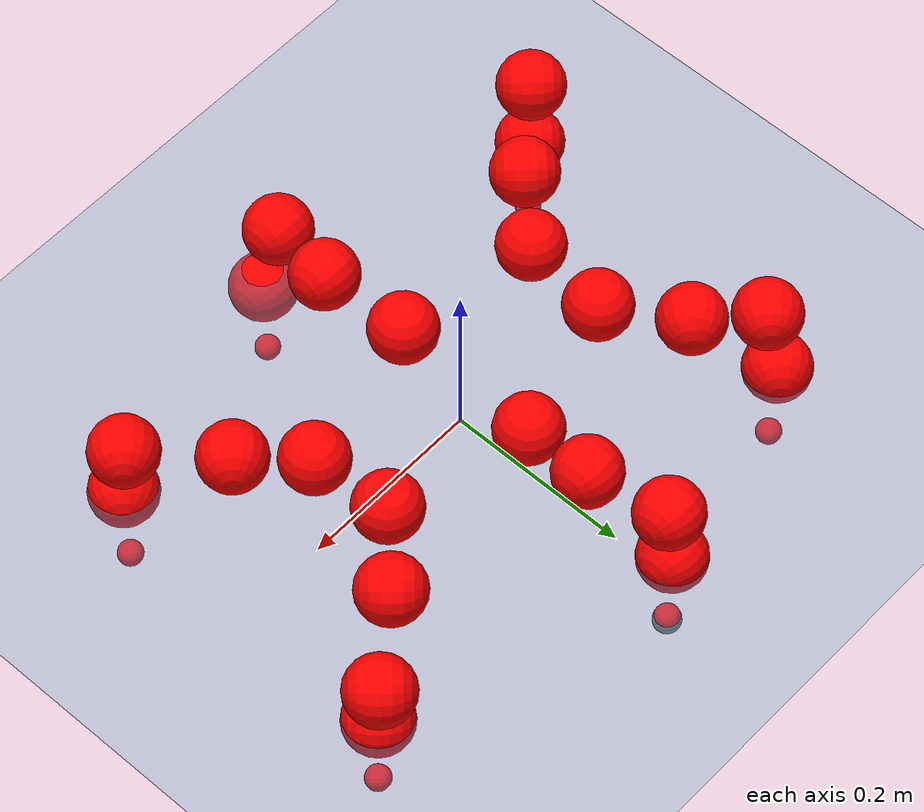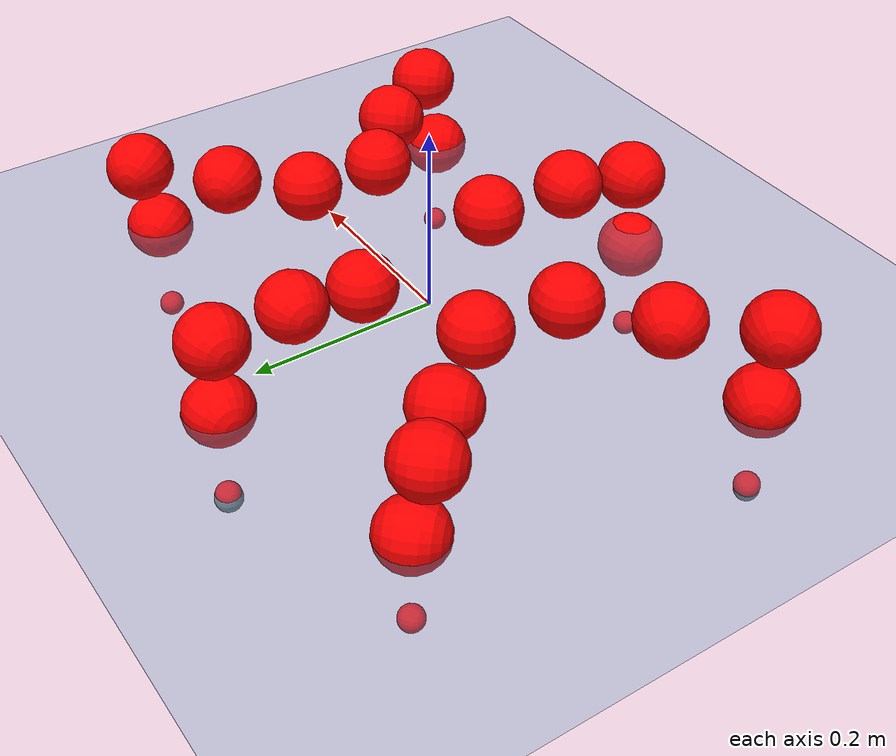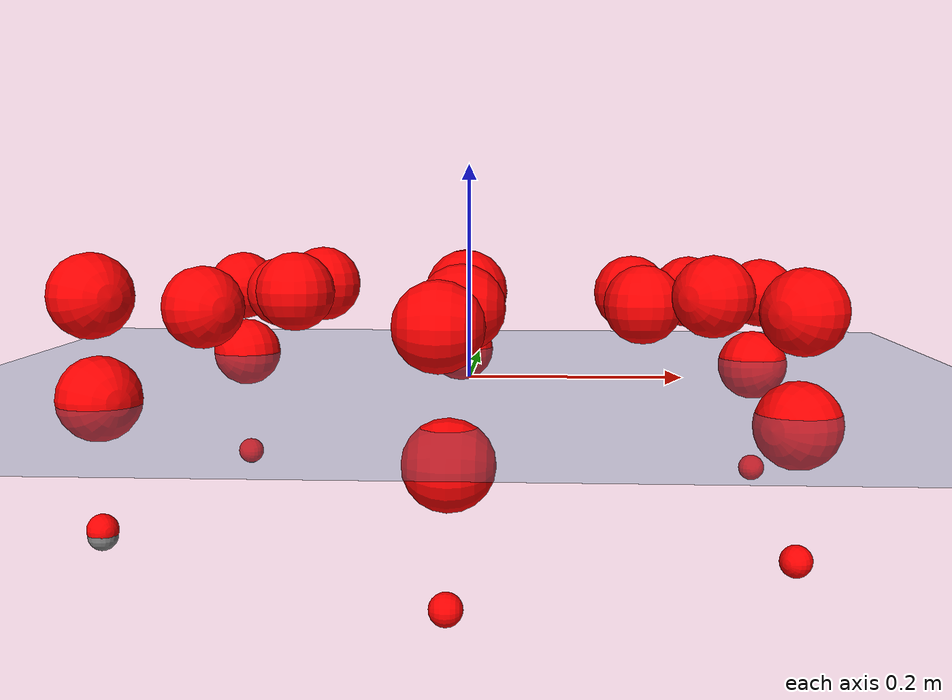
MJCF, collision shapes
<mujoco model="Golem">
  <compiler angle="radian" assetdir="assets" balanceinertia="true" inertiafromgeom="false"/>

  <option timestep="0.005" density="1.2" viscosity="2e-05"/>

  <size nkey="1"/>

  <visual>
    <quality shadowsize="8192"/>
    <map shadowclip="0.5"/>
  </visual>

  <default>
    <default class="/">
      <joint armature="0.01" damping="0.01" frictionloss="0.01"/>
      <geom contype="0" conaffinity="0" group="1" solref="-1000 -80"/>
      <site size="0.01 0.005 0.005" group="5"/>
      <general forcelimited="true" biastype="affine" gainprm="25" biasprm="0 -25 -0.5"/>
      <default class="visual">
        <geom type="mesh" group="2"/>
      </default>
      <default class="collision">
        <geom group="3"/>
      </default>
      <default class="foot">
        <geom size="0.01 0 0" condim="6" group="4" priority="1" solimp="0.015 1 0.01"/>
      </default>
      <default class="reward_collision_sphere">
        <geom group="5" rgba="1 0 0 1"/>
      </default>
    </default>
  </default>

  <asset>
    <texture type="skybox" colorspace="auto" name="//unnamed_texture_0" builtin="gradient" rgb1="0.95 0.95 0.95" rgb2="0.95 0.95 0.95" width="100" height="600"/>
    <texture type="2d" colorspace="auto" name="texplane" builtin="checker" rgb1="0.345 0.575 0.748" rgb2="0.345 0.575 0.748" markrgb="1 1 1" width="512" height="512"/>
    <material name="MatPlane" class="/" texture="texplane" texuniform="true" texrepeat="2 2" specular="0.9"/>
    <mesh name="body" class="/" file="body.stl" scale="0.001 0.001 0.001"/>
    <mesh name="coxa" class="/" file="coxa.stl" scale="0.001 0.001 0.001"/>
    <mesh name="femur" class="/" file="femur.stl" scale="0.001 0.001 0.001"/>
    <mesh name="tibia" class="/" file="tibia.stl" scale="0.001 0.001 0.001"/>
    <mesh name="tarsus" class="/" file="tarsus.stl" scale="0.001 0.001 0.001"/>
  </asset>

  <worldbody>
    <geom name="floor" class="/" size="100 100 0.125" type="plane" group="0" material="MatPlane"/>
    <light name="toplight_shadow" class="/" pos="0 0 5" dir="0.0990148 0.0990148 -0.990148" type="directional" ambient="0.04 0.04 0.04" diffuse="0.55 0.55 0.55" specular="0.12 0.12 0.12"/>
    <light name="toplight_fill" class="/" pos="0 0 5" dir="0.0990148 0.0990148 -0.990148" type="directional" castshadow="false" ambient="0.04 0.04 0.04" diffuse="0.3 0.3 0.3" specular="0.08 0.08 0.08"/>
    <body name="trunk" pos="0.00893068 -0.00303549 0.0161275" quat="1 -0.000179543 0.000496812 0.000419447">
      <inertial pos="-0.00924165 0.000212151 -0.0148625" quat="0.998186 -0.0379214 0.0107564 0.0455131" mass="2.19828" diaginertia="0.0138252 0.00264503 0.0043182"/>
      <joint name="//unnamed_joint_0" type="free"/>
      <geom name="//unnamed_geom_1" class="/" pos="0 0 0.0556748" quat="1 0 0 0" type="mesh" rgba="0.9 0.9 0.9 1" mesh="body"/>
      <site name="imu" class="/" pos="0.118728 0.0176863 0.0550105" size="0.00900817"/>
      <camera name="track" class="/" pos="0 -1.59572 0" quat="0.707107 0.707107 0 0" mode="trackcom"/>
      <camera name="ego_camera" class="/" pos="0.134507 0 0.0869919" quat="-0.5 -0.5 0.5 0.5"/>
      <body name="coxa_RR" pos="-0.18791 -0.0686462 0.0678015" quat="0.381772 0.00121111 0.00146271 -0.924255">
        <inertial pos="0.00163485 0.0158919 -0.00385777" quat="0.999645 -0.00276631 -0.0228648 0.0134142" mass="0.177154" diaginertia="0.0165576 0.00323466 0.00553781"/>
        <joint name="coxa_joint_RR" class="/" pos="0 0 0" axis="-0.0716217 0.051911 -0.99608" range="-3.14606 3.36773" armature="0.0135457" damping="0.0486134" frictionloss="0.00720052"/>
        <geom name="//unnamed_geom_2" class="/" type="mesh" rgba="0.2 0.2 0.2 1" mesh="coxa"/>
        <geom name="//unnamed_geom_3" class="reward_collision_sphere" size="0.0360327" pos="-0.0310401 0 0"/>
        <body name="femur_RR" pos="0.0653897 0.0008046 -0.00862121" quat="0.49989 -0.500031 0.500337 0.499741">
          <inertial pos="0.00562333 -0.00992777 0.00986257" quat="0.999989 0.00223738 -0.00167539 -0.00387286" mass="0.155115" diaginertia="0.0123497 0.0033131 0.00517607"/>
          <joint name="femur_joint_RR" class="/" pos="0 0 0" axis="0.000751534 -0.00202231 -0.999998" stiffness="0.0354787" range="-3.26022 3.43787" armature="0.0143029" damping="0" frictionloss="0.00365378"/>
          <geom name="//unnamed_geom_4" class="/" type="mesh" rgba="0.9 0.9 0.9 1" mesh="femur"/>
          <geom name="//unnamed_geom_5" class="reward_collision_sphere" size="0.0360327"/>
          <body name="tibia_RR" pos="-0.0145122 -0.0976029 -0.0113852" quat="0.003411 0.999989 -0.00275995 0.00155876">
            <inertial pos="0.0138598 0.0106128 -0.00043327" quat="0.998063 0.0567623 -0.0236229 -0.00947232" mass="0.145125" diaginertia="0.0146035 0.00357453 0.00556776"/>
            <joint name="tibia_joint_RR" class="/" pos="0 0 0" axis="0.00330771 -0.048291 0.998828" range="-2.82658 3.30083" armature="0.0139049" damping="0.0469041" frictionloss="0.00739329"/>
            <geom name="//unnamed_geom_6" class="/" type="mesh" rgba="0.2 0.2 0.2 1" mesh="tibia"/>
            <geom name="//unnamed_geom_7" class="reward_collision_sphere" size="0.0360327"/>
            <body name="tarsus_RR" pos="0.0858606 -0.00479245 -0.000108311" quat="0.999995 0.00067533 0.00133519 0.00266621">
              <inertial pos="0.0583467 -0.0146527 0.0119218" quat="0.478067 0.527423 0.507624 0.48538" mass="0.135172" diaginertia="0.0113832 0.00267536 0.00467772"/>
              <joint name="tarsus_joint_RR" class="/" pos="0 0 0" axis="0.00945843 0.00752931 0.999927" stiffness="0.076757" range="-3.22227 3.13971" armature="0.00288547" damping="0" frictionloss="0.0032213"/>
              <geom name="//unnamed_geom_8" class="/" type="mesh" rgba="0.9 0.9 0.9 1" mesh="tarsus"/>
              <geom name="foot_1" class="foot" size="0.012914" pos="0.115883 0 0" quat="0 -0.707107 0 0.707107"/>
              <geom name="//unnamed_geom_10" class="reward_collision_sphere" size="0.0360327"/>
              <geom name="//unnamed_geom_11" class="reward_collision_sphere" size="0.0135123" pos="0.111227 0 0"/>
              <site name="foot_1" class="foot" pos="0.115883 0 0" quat="0 -0.707107 0 0.707107" size="0.00900817"/>
            </body>
          </body>
        </body>
      </body>
      <body name="coxa_RM" pos="-0.00760885 -0.101061 0.071519" quat="0.70913 -0.00774442 0.000757797 -0.705035">
        <inertial pos="0.0141551 0.000409916 0.00856757" quat="0.999771 0.0074623 0.0182911 0.00827772" mass="0.181945" diaginertia="0.0153923 0.00406214 0.00588305"/>
        <joint name="coxa_joint_RM" class="/" pos="0 0 0" axis="-0.00271535 0.0271326 -0.999628" stiffness="0.0436856" range="-2.8039 3.15458" armature="0.0117003" damping="0" frictionloss="0.00916134"/>
        <geom name="//unnamed_geom_12" class="/" type="mesh" rgba="0.2 0.2 0.2 1" mesh="coxa"/>
        <geom name="//unnamed_geom_13" class="reward_collision_sphere" size="0.0360327" pos="-0.0310401 0 0"/>
        <body name="femur_RM" pos="0.0716879 0.00124915 -0.00766707" quat="0.499937 -0.505242 0.494991 0.499777">
          <inertial pos="-0.00889018 0.00824172 -0.00801349" quat="0.997458 -0.011371 -0.0100692 0.0696153" mass="0.122415" diaginertia="0.00985819 0.00313573 0.00433623"/>
          <joint name="femur_joint_RM" class="/" pos="0 0 0" axis="0.00407354 -0.0103331 -0.999938" stiffness="0.0805809" range="-3.10396 3.15274" armature="0.00676039" damping="0.019376" frictionloss="0.0126425"/>
          <geom name="//unnamed_geom_14" class="/" type="mesh" rgba="0.9 0.9 0.9 1" mesh="femur"/>
          <geom name="//unnamed_geom_15" class="reward_collision_sphere" size="0.0360327"/>
          <body name="tibia_RM" pos="0.00965551 -0.0747003 -0.0142365" quat="-0.00157881 0.999997 -0.00158138 0.000551632">
            <inertial pos="0.00716651 -0.0175227 -0.00262995" quat="0.999605 -0.00205052 -0.0252242 0.0122517" mass="0.116621" diaginertia="0.00924536 0.00256815 0.003488"/>
            <joint name="tibia_joint_RM" class="/" pos="0 0 0" axis="-9.57128e-05 -0.0518688 0.998654" range="-3.37394 3.49329" armature="0.00414098" damping="0.0849236" frictionloss="0.00775243"/>
            <geom name="//unnamed_geom_16" class="/" type="mesh" rgba="0.2 0.2 0.2 1" mesh="tibia"/>
            <geom name="//unnamed_geom_17" class="reward_collision_sphere" size="0.0360327"/>
            <body name="tarsus_RM" pos="0.102652 0.0148094 -0.00990652" quat="0.999982 0.00439411 -0.00415784 -0.000332797">
              <inertial pos="0.0539407 -0.0163845 -0.00762525" quat="0.500451 0.501136 0.501729 0.496668" mass="0.203501" diaginertia="0.0137991 0.00346478 0.00639301"/>
              <joint name="tarsus_joint_RM" class="/" pos="0 0 0" axis="0.0218483 0.0463978 0.998684" stiffness="0.015461" range="-3.10583 3.24316" armature="0.00444687" damping="0" frictionloss="0.00921533"/>
              <geom name="//unnamed_geom_18" class="/" type="mesh" rgba="0.9 0.9 0.9 1" mesh="tarsus"/>
              <geom name="foot_2" class="foot" size="0.00633751" pos="0.115883 0 0" quat="0 -0.707107 0 0.707107"/>
              <geom name="//unnamed_geom_20" class="reward_collision_sphere" size="0.0360327"/>
              <geom name="//unnamed_geom_21" class="reward_collision_sphere" size="0.0135123" pos="0.111227 0 0"/>
              <site name="foot_2" class="foot" pos="0.115883 0 0" quat="0 -0.707107 0 0.707107" size="0.00900817"/>
            </body>
          </body>
        </body>
      </body>
      <body name="coxa_RF" pos="0.173302 -0.0587662 0.0568869" quat="0.924626 0.00337111 -0.00387257 -0.380842">
        <inertial pos="0.0147444 -0.00590344 -0.0133438" quat="0.998695 0.0282611 -0.0366194 0.0216317" mass="0.104029" diaginertia="0.0105252 0.00307933 0.00443643"/>
        <joint name="coxa_joint_RF" class="/" pos="0 0 0" axis="0.0371357 0.03492 -0.9987" stiffness="0.0237267" range="-2.93009 3.14313" armature="0.0154899" damping="0" frictionloss="0.00410862"/>
        <geom name="//unnamed_geom_22" class="/" type="mesh" rgba="0.2 0.2 0.2 1" mesh="coxa"/>
        <geom name="//unnamed_geom_23" class="reward_collision_sphere" size="0.0360327" pos="-0.0310401 0 0"/>
        <body name="femur_RF" pos="0.0459304 0.00255414 0.011198" quat="0.501532 -0.504593 0.494798 0.499026">
          <inertial pos="0.00468418 0.00889406 -0.00421639" quat="0.99979 -0.0174734 0.00954343 0.00488544" mass="0.208155" diaginertia="0.0115866 0.00426895 0.00683127"/>
          <joint name="femur_joint_RF" class="/" pos="0 0 0" axis="0.0145103 0.00611825 -0.999876" stiffness="0.082704" range="-3.30168 3.44942" armature="0.0160735" damping="0" frictionloss="0.0165705"/>
          <geom name="//unnamed_geom_24" class="/" type="mesh" rgba="0.9 0.9 0.9 1" mesh="femur"/>
          <geom name="//unnamed_geom_25" class="reward_collision_sphere" size="0.0360327"/>
          <body name="tibia_RF" pos="0.00716647 -0.102121 -0.0162946" quat="0.000660773 0.999999 -0.00078872 7.44852e-05">
            <inertial pos="0.014931 0.00589044 -0.000391852" quat="0.999904 0.00508255 0.0108014 0.00700742" mass="0.159094" diaginertia="0.0156763 0.00369498 0.00572012"/>
            <joint name="tibia_joint_RF" class="/" pos="0 0 0" axis="-0.0464806 0.0161397 0.998789" stiffness="0.0401344" range="-3.35828 3.07473" armature="0.0097312" damping="0.0777385" frictionloss="0.00431934"/>
            <geom name="//unnamed_geom_26" class="/" type="mesh" rgba="0.2 0.2 0.2 1" mesh="tibia"/>
            <geom name="//unnamed_geom_27" class="reward_collision_sphere" size="0.0360327"/>
            <body name="tarsus_RF" pos="0.089571 0.00432257 0.0148276" quat="0.999982 0.00461681 0.00060407 -0.00378725">
              <inertial pos="0.0762811 0.0103632 0.00218506" quat="0.470522 0.57233 0.464093 0.485453" mass="0.152113" diaginertia="0.0131595 0.00308038 0.0067011"/>
              <joint name="tarsus_joint_RF" class="/" pos="0 0 0" axis="0.0136552 0.0482433 0.998742" range="-3.01725 3.13303" armature="0.015652" damping="0.00788615" frictionloss="0.0153077"/>
              <geom name="//unnamed_geom_28" class="/" type="mesh" rgba="0.9 0.9 0.9 1" mesh="tarsus"/>
              <geom name="foot_3" class="foot" size="0.00914986" pos="0.115883 0 0" quat="0 -0.707107 0 0.707107"/>
              <geom name="//unnamed_geom_30" class="reward_collision_sphere" size="0.0360327"/>
              <geom name="//unnamed_geom_31" class="reward_collision_sphere" size="0.0135123" pos="0.111227 0 0"/>
              <site name="foot_3" class="foot" pos="0.115883 0 0" quat="0 -0.707107 0 0.707107" size="0.00900817"/>
            </body>
          </body>
        </body>
      </body>
      <body name="coxa_LR" pos="-0.177523 0.0709767 0.06871" quat="0.381666 -0.00196232 -0.00195843 0.924296">
        <inertial pos="-0.00795201 -0.000658532 0.00283597" quat="0.99686 -0.0334812 0.0215255 -0.0684499" mass="0.136167" diaginertia="0.0115451 0.0023417 0.00479144"/>
        <joint name="coxa_joint_LR" class="/" pos="0 0 0" axis="0.0129904 -0.0414648 -0.999056" range="-3.10383 2.95769" armature="0.00247826" damping="0" frictionloss="0.00554893"/>
        <geom name="//unnamed_geom_32" class="/" type="mesh" rgba="0.2 0.2 0.2 1" mesh="coxa"/>
        <geom name="//unnamed_geom_33" class="reward_collision_sphere" size="0.0360327" pos="-0.0310401 0 0"/>
        <body name="femur_LR" pos="0.0592471 -0.0111255 -0.0134036" quat="0.496595 -0.497434 0.503433 0.502501">
          <inertial pos="0.0138765 0.0155568 -0.0155458" quat="0.999994 -0.00239564 0.00233421 0.000703451" mass="0.10376" diaginertia="0.00915924 0.00232206 0.00477658"/>
          <joint name="femur_joint_LR" class="/" pos="0 0 0" axis="-0.0639078 -0.0490288 0.996751" stiffness="0.0472341" range="-2.9026 3.39087" armature="0.000928792" damping="0" frictionloss="0.0152134"/>
          <geom name="//unnamed_geom_34" class="/" type="mesh" rgba="0.9 0.9 0.9 1" mesh="femur"/>
          <geom name="//unnamed_geom_35" class="reward_collision_sphere" size="0.0360327"/>
          <body name="tibia_LR" pos="-0.00383795 -0.0735754 0.000285829" quat="-0.000660425 0.999999 0.0011566 0.000543004">
            <inertial pos="-0.000757866 0.0154902 -0.000807144" quat="0.998841 0.0419775 0.0179449 0.015268" mass="0.194745" diaginertia="0.0154531 0.0032527 0.00688571"/>
            <joint name="tibia_joint_LR" class="/" pos="0 0 0" axis="0.00127528 -0.0740969 -0.99725" stiffness="0.0737486" range="-3.14921 3.43318" armature="0.00887944" damping="0" frictionloss="0.00369744"/>
            <geom name="//unnamed_geom_36" class="/" type="mesh" rgba="0.2 0.2 0.2 1" mesh="tibia"/>
            <geom name="//unnamed_geom_37" class="reward_collision_sphere" size="0.0360327"/>
            <body name="tarsus_LR" pos="0.0745063 0.0142887 0.0109528" quat="0.999983 -0.00195975 -0.00505085 0.00192992">
              <inertial pos="0.0705669 -0.00881204 0.012849" quat="0.489015 0.501486 0.502798 0.506528" mass="0.164974" diaginertia="0.0114509 0.00278028 0.00456688"/>
              <joint name="tarsus_joint_LR" class="/" pos="0 0 0" axis="-0.000258652 -0.0121835 -0.999926" stiffness="0.0326282" range="-2.88489 3.21833" armature="0.0149785" damping="0.025473" frictionloss="0.0101267"/>
              <geom name="//unnamed_geom_38" class="/" type="mesh" rgba="0.9 0.9 0.9 1" mesh="tarsus"/>
              <geom name="foot_4" class="foot" size="0.00933299" pos="0.115883 0 0" quat="0.707107 0 -0.707107 0"/>
              <geom name="//unnamed_geom_40" class="reward_collision_sphere" size="0.0360327"/>
              <geom name="//unnamed_geom_41" class="reward_collision_sphere" size="0.0135123" pos="0.111227 0 0"/>
              <site name="foot_4" class="foot" pos="0.115883 0 0" quat="0.707107 0 -0.707107 0" size="0.00900817"/>
            </body>
          </body>
        </body>
      </body>
      <body name="coxa_LM" pos="-0.0157701 0.115833 0.0449662" quat="0.706928 -0.000973634 -0.000454543 0.707285">
        <inertial pos="-0.0110275 -0.00752932 -0.00817052" quat="0.998813 0.0383263 0.00595414 0.0294574" mass="0.178063" diaginertia="0.0102417 0.00373164 0.00474907"/>
        <joint name="coxa_joint_LM" class="/" pos="0 0 0" axis="0.0129581 0.0734842 -0.997212" stiffness="0.0156487" range="-3.31771 2.80491" armature="0.00856715" damping="0.00757129" frictionloss="0.00962683"/>
        <geom name="//unnamed_geom_42" class="/" type="mesh" rgba="0.2 0.2 0.2 1" mesh="coxa"/>
        <geom name="//unnamed_geom_43" class="reward_collision_sphere" size="0.0360327" pos="-0.0310401 0 0"/>
        <body name="femur_LM" pos="0.0449784 -0.00218215 0.00622329" quat="0.496027 -0.503772 0.496919 0.503233">
          <inertial pos="-0.0123184 0.00478414 0.011713" quat="0.999961 0.00586734 0.00602729 -0.00282256" mass="0.0983831" diaginertia="0.0106256 0.00271413 0.00348836"/>
          <joint name="femur_joint_LM" class="/" pos="0 0 0" axis="-0.0410304 -0.0490621 0.997953" range="-2.83458 3.442" armature="0.00603202" damping="0" frictionloss="0.00370575"/>
          <geom name="//unnamed_geom_44" class="/" type="mesh" rgba="0.9 0.9 0.9 1" mesh="femur"/>
          <geom name="//unnamed_geom_45" class="reward_collision_sphere" size="0.0360327"/>
          <body name="tibia_LM" pos="-0.00724007 -0.0898643 0.0115743" quat="-0.00265932 0.999994 -0.00221227 0.000662976">
            <inertial pos="-0.0117019 -0.0100347 -0.00212185" quat="0.999218 0.0347981 0.00334818 0.0184938" mass="0.11351" diaginertia="0.0104888 0.00339242 0.00375143"/>
            <joint name="tibia_joint_LM" class="/" pos="0 0 0" axis="-0.0583972 0.000134394 -0.998293" stiffness="0.08848" range="-3.08869 3.13283" armature="0.0155218" damping="0.0475821" frictionloss="0.00995213"/>
            <geom name="//unnamed_geom_46" class="/" type="mesh" rgba="0.2 0.2 0.2 1" mesh="tibia"/>
            <geom name="//unnamed_geom_47" class="reward_collision_sphere" size="0.0360327"/>
            <body name="tarsus_LM" pos="0.077641 0.00363801 -0.00541085" quat="1 -0.000159199 -4.52233e-05 0.000150803">
              <inertial pos="0.056449 0.00353464 -0.01332" quat="0.471418 0.520708 0.480678 0.524954" mass="0.163137" diaginertia="0.0143461 0.00270442 0.00506425"/>
              <joint name="tarsus_joint_LM" class="/" pos="0 0 0" axis="-0.0100421 0.00763331 -0.99992" stiffness="0.0583769" range="-2.99286 3.09611" armature="0.0112836" damping="0" frictionloss="0.00876679"/>
              <geom name="//unnamed_geom_48" class="/" type="mesh" rgba="0.9 0.9 0.9 1" mesh="tarsus"/>
              <geom name="foot_5" class="foot" size="0.0148478" pos="0.115883 0 0" quat="0.707107 0 -0.707107 0"/>
              <geom name="//unnamed_geom_50" class="reward_collision_sphere" size="0.0360327"/>
              <geom name="//unnamed_geom_51" class="reward_collision_sphere" size="0.0135123" pos="0.111227 0 0"/>
              <site name="foot_5" class="foot" pos="0.115883 0 0" quat="0.707107 0 -0.707107 0" size="0.00900817"/>
            </body>
          </body>
        </body>
      </body>
      <body name="coxa_LF" pos="0.168421 0.0743721 0.0606709" quat="0.925689 -0.00593267 0.00104455 0.378237">
        <inertial pos="0.00133899 -0.000751423 -0.0133018" quat="0.99946 -0.0154299 0.00243477 0.0289078" mass="0.16037" diaginertia="0.0112893 0.00436862 0.00550804"/>
        <joint name="coxa_joint_LF" class="/" pos="0 0 0" axis="0.0582128 -0.0374428 -0.997602" stiffness="0.0277132" range="-3.24445 3.0578" armature="0.00739192" damping="0.00334248" frictionloss="0.0150943"/>
        <geom name="//unnamed_geom_52" class="/" type="mesh" rgba="0.2 0.2 0.2 1" mesh="coxa"/>
        <geom name="//unnamed_geom_53" class="reward_collision_sphere" size="0.0360327" pos="-0.0310401 0 0"/>
        <body name="femur_LF" pos="0.0574617 0.000664995 -0.00266831" quat="0.49764 -0.503453 0.499789 0.499101">
          <inertial pos="-0.000119036 -0.0030229 -0.0153037" quat="0.998273 0.0341436 0.0342588 -0.0333286" mass="0.113271" diaginertia="0.0137152 0.00347528 0.00495608"/>
          <joint name="femur_joint_LF" class="/" pos="0 0 0" axis="0.0471431 -0.0429454 0.997965" stiffness="0.00530311" range="-3.22234 3.13468" armature="0.00981301" damping="0.00129416" frictionloss="0.00252973"/>
          <geom name="//unnamed_geom_54" class="/" type="mesh" rgba="0.9 0.9 0.9 1" mesh="femur"/>
          <geom name="//unnamed_geom_55" class="reward_collision_sphere" size="0.0360327"/>
          <body name="tibia_LF" pos="0.0052301 -0.103778 -0.0136544" quat="-0.00352265 0.999968 -0.00576282 -0.0042659">
            <inertial pos="-0.00496895 0.00371034 0.0130128" quat="0.996921 -0.0354748 -0.0261275 0.0648678" mass="0.129757" diaginertia="0.00888758 0.00310991 0.00481903"/>
            <joint name="tibia_joint_LF" class="/" pos="0 0 0" axis="-0.000330109 2.73627e-05 -1" stiffness="0.0521627" range="-3.48913 2.95965" armature="0.0112425" damping="0" frictionloss="0.00916405"/>
            <geom name="//unnamed_geom_56" class="/" type="mesh" rgba="0.2 0.2 0.2 1" mesh="tibia"/>
            <geom name="//unnamed_geom_57" class="reward_collision_sphere" size="0.0360327"/>
            <body name="tarsus_LF" pos="0.0761835 -0.0136655 0.00025824" quat="0.999989 -0.00152403 0.00314056 -0.0032835">
              <inertial pos="0.0785237 0.00746859 -0.00169505" quat="0.500676 0.500672 0.49983 0.49882" mass="0.190466" diaginertia="0.0153405 0.00422556 0.00459175"/>
              <joint name="tarsus_joint_LF" class="/" pos="0 0 0" axis="-0.0488574 -0.0532906 -0.997383" stiffness="0.0617295" range="-3.1296 3.40834" armature="0.00175749" damping="0" frictionloss="0.00132424"/>
              <geom name="//unnamed_geom_58" class="/" type="mesh" rgba="0.9 0.9 0.9 1" mesh="tarsus"/>
              <geom name="foot_6" class="foot" size="0.00684544" pos="0.115883 0 0" quat="0.707107 0 -0.707107 0"/>
              <geom name="//unnamed_geom_60" class="reward_collision_sphere" size="0.0360327"/>
              <geom name="//unnamed_geom_61" class="reward_collision_sphere" size="0.0135123" pos="0.111227 0 0"/>
              <site name="foot_6" class="foot" pos="0.115883 0 0" quat="0.707107 0 -0.707107 0" size="0.00900817"/>
            </body>
          </body>
        </body>
      </body>
    </body>
  </worldbody>

  <contact>
    <pair class="/" geom1="floor" geom2="foot_1" name="//unnamed_contact_0"/>
    <pair class="/" geom1="floor" geom2="foot_2" name="//unnamed_contact_1"/>
    <pair class="/" geom1="floor" geom2="foot_3" name="//unnamed_contact_2"/>
    <pair class="/" geom1="floor" geom2="foot_4" name="//unnamed_contact_3"/>
    <pair class="/" geom1="floor" geom2="foot_5" name="//unnamed_contact_4"/>
    <pair class="/" geom1="floor" geom2="foot_6" name="//unnamed_contact_5"/>
  </contact>

  <actuator>
    <general name="coxa_joint_RR" class="/" joint="coxa_joint_RR" forcerange="-3.87706 3.87706" gainprm="19.1048" biasprm="0 -19.1048 -0.403061"/>
    <general name="femur_joint_RR" class="/" joint="femur_joint_RR" forcerange="-3.52946 3.52946" gainprm="19.1048" biasprm="0 -19.1048 -0.403061"/>
    <general name="tibia_joint_RR" class="/" joint="tibia_joint_RR" forcerange="-9.71916 9.71916" gainprm="19.1048" biasprm="0 -19.1048 -0.403061"/>
    <general name="tarsus_joint_RR" class="/" joint="tarsus_joint_RR" forcerange="-9.90427 9.90427" gainprm="19.1048" biasprm="0 -19.1048 -0.403061"/>
    <general name="coxa_joint_RM" class="/" joint="coxa_joint_RM" forcerange="-10.3378 10.3378" gainprm="19.1048" biasprm="0 -19.1048 -0.403061"/>
    <general name="femur_joint_RM" class="/" joint="femur_joint_RM" forcerange="-5.32558 5.32558" gainprm="19.1048" biasprm="0 -19.1048 -0.403061"/>
    <general name="tibia_joint_RM" class="/" joint="tibia_joint_RM" forcerange="-6.91953 6.91953" gainprm="19.1048" biasprm="0 -19.1048 -0.403061"/>
    <general name="tarsus_joint_RM" class="/" joint="tarsus_joint_RM" forcerange="-7.22736 7.22736" gainprm="19.1048" biasprm="0 -19.1048 -0.403061"/>
    <general name="coxa_joint_RF" class="/" joint="coxa_joint_RF" forcerange="-5.69366 5.69366" gainprm="19.1048" biasprm="0 -19.1048 -0.403061"/>
    <general name="femur_joint_RF" class="/" joint="femur_joint_RF" forcerange="-2.30447 2.30447" gainprm="19.1048" biasprm="0 -19.1048 -0.403061"/>
    <general name="tibia_joint_RF" class="/" joint="tibia_joint_RF" forcerange="-2.73478 2.73478" gainprm="19.1048" biasprm="0 -19.1048 -0.403061"/>
    <general name="tarsus_joint_RF" class="/" joint="tarsus_joint_RF" forcerange="-2.93034 2.93034" gainprm="19.1048" biasprm="0 -19.1048 -0.403061"/>
    <general name="coxa_joint_LR" class="/" joint="coxa_joint_LR" forcerange="-6.5697 6.5697" gainprm="19.1048" biasprm="0 -19.1048 -0.403061"/>
    <general name="femur_joint_LR" class="/" joint="femur_joint_LR" forcerange="-6.20621 6.20621" gainprm="19.1048" biasprm="0 -19.1048 -0.403061"/>
    <general name="tibia_joint_LR" class="/" joint="tibia_joint_LR" forcerange="-2.40771 2.40771" gainprm="19.1048" biasprm="0 -19.1048 -0.403061"/>
    <general name="tarsus_joint_LR" class="/" joint="tarsus_joint_LR" forcerange="-2.73693 2.73693" gainprm="19.1048" biasprm="0 -19.1048 -0.403061"/>
    <general name="coxa_joint_LM" class="/" joint="coxa_joint_LM" forcerange="-5.90077 5.90077" gainprm="19.1048" biasprm="0 -19.1048 -0.403061"/>
    <general name="femur_joint_LM" class="/" joint="femur_joint_LM" forcerange="-7.52826 7.52826" gainprm="19.1048" biasprm="0 -19.1048 -0.403061"/>
    <general name="tibia_joint_LM" class="/" joint="tibia_joint_LM" forcerange="-6.52127 6.52127" gainprm="19.1048" biasprm="0 -19.1048 -0.403061"/>
    <general name="tarsus_joint_LM" class="/" joint="tarsus_joint_LM" forcerange="-8.59272 8.59272" gainprm="19.1048" biasprm="0 -19.1048 -0.403061"/>
    <general name="coxa_joint_LF" class="/" joint="coxa_joint_LF" forcerange="-6.66668 6.66668" gainprm="19.1048" biasprm="0 -19.1048 -0.403061"/>
    <general name="femur_joint_LF" class="/" joint="femur_joint_LF" forcerange="-3.00534 3.00534" gainprm="19.1048" biasprm="0 -19.1048 -0.403061"/>
    <general name="tibia_joint_LF" class="/" joint="tibia_joint_LF" forcerange="-3.18943 3.18943" gainprm="19.1048" biasprm="0 -19.1048 -0.403061"/>
    <general name="tarsus_joint_LF" class="/" joint="tarsus_joint_LF" forcerange="-5.65826 5.65826" gainprm="19.1048" biasprm="0 -19.1048 -0.403061"/>
  </actuator>

  <sensor>
    <gyro site="imu" name="imu_angular_velocity"/>
    <velocimeter site="imu" name="imu_linear_velocity"/>
    <framelinvel objtype="site" objname="foot_1" name="foot_1_global_linear_velocity"/>
    <framelinvel objtype="site" objname="foot_2" name="foot_2_global_linear_velocity"/>
    <framelinvel objtype="site" objname="foot_3" name="foot_3_global_linear_velocity"/>
    <framelinvel objtype="site" objname="foot_4" name="foot_4_global_linear_velocity"/>
    <framelinvel objtype="site" objname="foot_5" name="foot_5_global_linear_velocity"/>
    <framelinvel objtype="site" objname="foot_6" name="foot_6_global_linear_velocity"/>
  </sensor>

  <keyframe>
    <key name="home" qpos="0 0 0.1457 1 0 0 0 0 0 0 0 0 0 0 0 0 0 0 0 0 0 0 0 0 0 0 0 0 0 0 0"/>
  </keyframe>
</mujoco>
